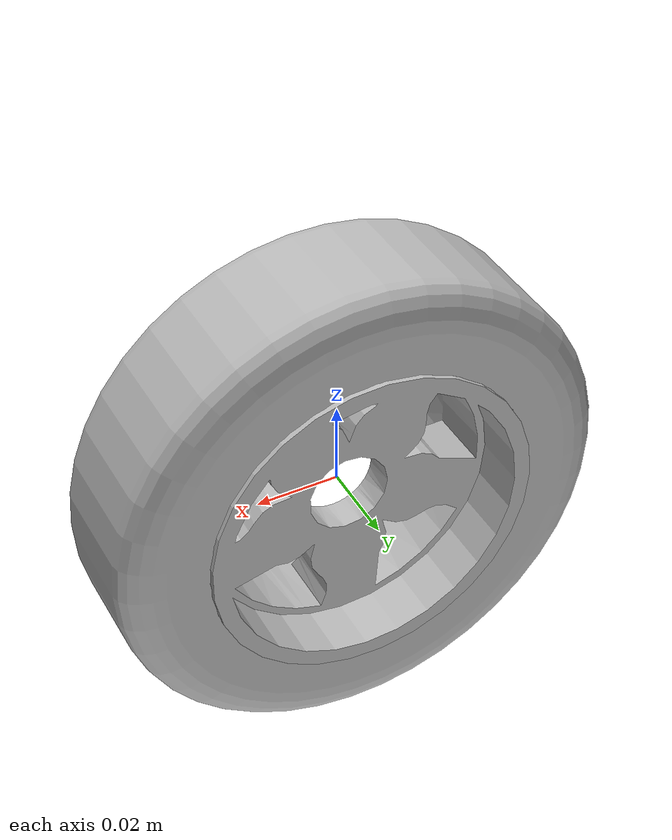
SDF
<?xml version="1.0" ?>
<sdf version="1.5">
  <model name="f1cart_wheel">
    <link name="tyre">
      <inertial>
        <mass>0.45</mass>
        <pose> 0.0 0.0 0.0 0.0 0.0 0.0</pose>
        <inertia>
          <ixx>0.00070</ixx>
          <ixy>0</ixy>
          <ixz>0</ixz>
          <iyy>0.0011568</iyy>
          <iyz>0</iyz>
          <izz>0.00070</izz>
        </inertia>
      </inertial>
      <collision name="tyre_collision">
        <pose> 0.0 0.0 0.0 1.57 0.0 0.0</pose>
        <geometry>
          <cylinder>
            <radius>0.06</radius>
            <length>0.039</length>
          </cylinder>
        </geometry>
        <surface>
          <friction>
            <ode>
              <mu>50.0</mu>
              <mu2>50.0</mu2>
              <fdir1>0 0 1</fdir1>
              <slip1>0.0</slip1>
              <slip2>0.0</slip2>
            </ode>
          </friction>
          <contact>
            <ode>
              <min_depth>0.005</min_depth>
              <kp>1e8</kp>
            </ode>
          </contact>
        </surface>
      </collision>
      <visual name="tyre_visual">
        <cast_shadows>true</cast_shadows>
        <geometry>
          <mesh>
             <scale>1 0.6 1</scale>
             <uri>model://f1cart/Meshes/f1cart_rtyre.dae</uri>
          </mesh>
        </geometry>
      </visual>
      <visual name="rim_visual">
        <cast_shadows>true</cast_shadows>
        <geometry>
          <mesh>
             <scale>1 0.6 1</scale>
             <uri>model://f1cart/Meshes/f1cart_rrim.dae</uri>
          </mesh>
        </geometry>
      </visual>
     <velocity_decay>
        <angular>0.0005</angular>
      </velocity_decay>
      <self_collide>false</self_collide>
    </link>

  </model>
</sdf>
